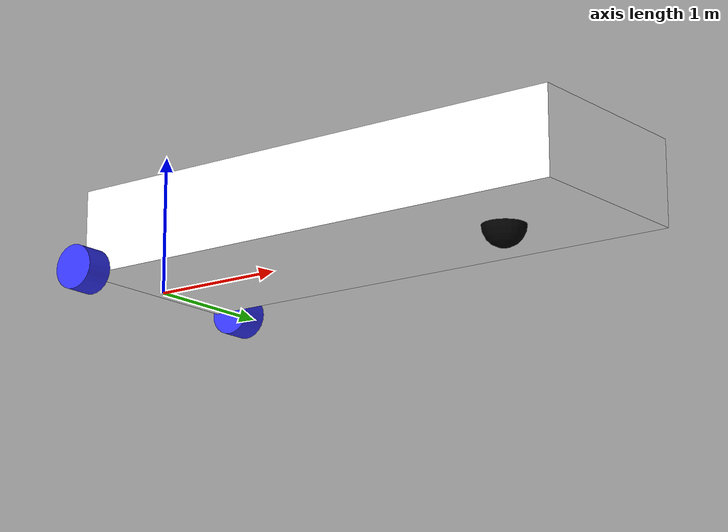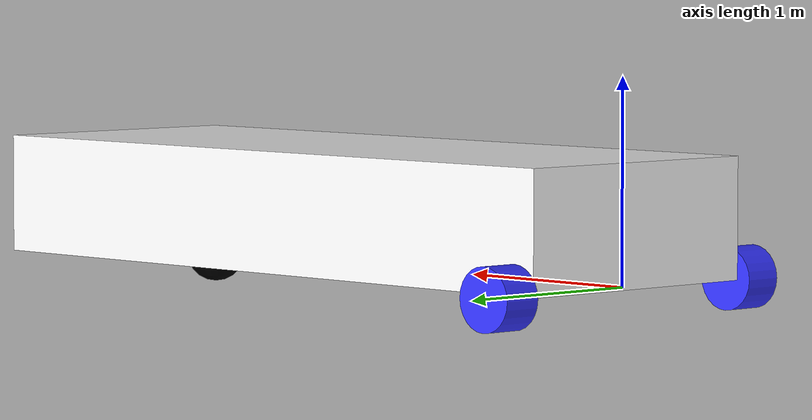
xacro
<?xml version="1.0"?>
<robot xmlns:xacro="http://www.ros.org/wiki/xacro" name="traffic_vehicle" >

    <xacro:include filename="$(find generate_labels)/urdf/inertial_macros.xacro"/>
    <xacro:arg name="robot_namespace" default=""/>
    <xacro:arg name="bit1" default="0xffff"/>

    <material name="white">
        <color rgba="1 1 1 1" />
    </material>

    <material name="orange">
        <color rgba="1 0.3 0.1 1"/>
    </material>

    <material name="blue">
        <color rgba="0.2 0.2 1 1"/>
    </material>

    <material name="black">
        <color rgba="0 0 0 1"/>
    </material>

    <!-- BASE LINK -->

    <link name="$(arg robot_namespace)/base_link">

    </link>

    <!-- CHASSIS LINK -->

    <joint name="$(arg robot_namespace)/chassis_joint" type="fixed">
        <parent link="$(arg robot_namespace)/base_link"/>
        <child link="$(arg robot_namespace)/chassis"/>
        <origin xyz="-0.1 0 0"/>
    </joint>

    <link name="$(arg robot_namespace)/chassis">
        <visual>
            <origin xyz="1.9 0.0 0.30"/>
            <geometry>
                <box size="3.8 1.4 0.60"/>
            </geometry>
            <material name="white"/>
        </visual>
        <collision>
            <origin xyz="1.9 0.0 0.30"/>
            <geometry>
                <box size="3.8 1.4 0.60"/>
            </geometry>
        </collision>
        <xacro:inertial_box mass="1.3729096e+00" x="2.0" y="1.4" z="0.15">
            <origin xyz="1.9 0 0.075" rpy="0 0 0"/>
        </xacro:inertial_box>
    </link>

    <!-- LEFT WHEEL LINK -->

    <joint name="$(arg robot_namespace)/left_wheel_joint" type="continuous">
        <parent link="$(arg robot_namespace)/base_link"/>
        <child link="$(arg robot_namespace)/left_wheel"/>
        <origin xyz="0 0.825 0" rpy="-${pi/2} 0 0" />
        <axis xyz="0 0 1"/>
    </joint>

    <link name="$(arg robot_namespace)/left_wheel">
        <visual>
            <geometry>
                <cylinder radius="0.155" length="0.2"/>
            </geometry>
            <material name="blue"/>
        </visual>
        <collision>
            <geometry>
                <cylinder radius="0.155" length="0.2"/>
            </geometry>
        </collision>
        <xacro:inertial_cylinder mass="2.8498940e-02" length="0.2" radius="0.155">
            <origin xyz="0 0 0" rpy="0 0 0"/>
        </xacro:inertial_cylinder>
    </link>

    <!-- RIGHT WHEEL LINK -->

    <joint name="$(arg robot_namespace)/right_wheel_joint" type="continuous">
        <parent link="$(arg robot_namespace)/base_link"/>
        <child link="$(arg robot_namespace)/right_wheel"/>
        <origin xyz="0 -0.825 0" rpy="${pi/2} 0 0" />
        <axis xyz="0 0 -1"/>
    </joint>

    <link name="$(arg robot_namespace)/right_wheel">
        <visual>
            <geometry>
                <cylinder radius="0.155" length="0.2"/>
            </geometry>
            <material name="blue"/>
        </visual>
        <collision>
            <geometry>
                <cylinder radius="0.155" length="0.2"/>
            </geometry>
        </collision>
        <xacro:inertial_cylinder mass="0.1" length="0.2" radius="0.155">
            <origin xyz="0 0 0" rpy="0 0 0"/>
        </xacro:inertial_cylinder>
    </link>

    <!-- CASTER WHEEL LINK -->

    <joint name="$(arg robot_namespace)/caster_wheel_joint" type="fixed">
        <parent link="$(arg robot_namespace)/chassis"/>
        <child link="$(arg robot_namespace)/caster_wheel"/>
        <origin xyz="3.0 0 0"/>
    </joint>

    <link name="$(arg robot_namespace)/caster_wheel">
        <visual>
            <geometry>
                <sphere radius="0.15"/>
            </geometry>
            <material name="black"/>
        </visual>
        <collision>
            <geometry>
                <sphere radius="0.15"/>
            </geometry>
        </collision>
        <xacro:inertial_sphere mass="0.1" radius="0.15">
            <origin xyz="0 0 0" rpy="0 0 0"/>
        </xacro:inertial_sphere>
    </link>

    <gazebo reference="$(arg robot_namespace)/chassis">
        <material>Gazebo/Green</material>
        <collision>
            <surface>
                <contact>
                    <collide_bitmask>$(arg bit1)</collide_bitmask>
                </contact>
            </surface>
        </collision>

    </gazebo>

    <gazebo reference="$(arg robot_namespace)/caster_wheel">
        <mu1>0.1</mu1>
        <mu2>0.1</mu2>
        <kp>1000000.0</kp>
        <kd>100.0</kd>
        <minDepth>0.001</minDepth>
        <maxVel>1.0</maxVel>
        <collision>
            <surface>
                <contact>
                    <collide_bitmask>$(arg bit1)</collide_bitmask>
                </contact>
            </surface>
        </collision>
        <material>Gazebo/FlatBlack</material>
    </gazebo>

    <gazebo reference="$(arg robot_namespace)/right_wheel">
        <mu1>500</mu1>
        <mu2>500</mu2>
        <kp>500000.0</kp>
        <kd>10.0</kd>
        <minDepth>0.001</minDepth>
        <maxVel>0.1</maxVel>
        <fdir1>1 0 0</fdir1>
        <collision>
            <surface>
                <contact>
                    <collide_bitmask>$(arg bit1)</collide_bitmask>
                </contact>
            </surface>
        </collision>
        <material>Gazebo/FlatBlack</material>
    </gazebo>

    <gazebo reference="$(arg robot_namespace)/left_wheel">
        <mu1>500</mu1>
        <mu2>500</mu2>
        <kp>500000.0</kp>
        <kd>10.0</kd>
        <minDepth>0.001</minDepth>
        <maxVel>0.1</maxVel>
        <fdir1>1 0 0</fdir1>
        <collision>
            <surface>
                <contact>
                    <collide_bitmask>$(arg bit1)</collide_bitmask>
                </contact>
            </surface>
        </collision>
        <material>Gazebo/FlatBlack</material>
    </gazebo>

    <gazebo>
        <plugin name="wheel_drive_controller" filename="libgazebo_ros_diff_drive.so">
            <!-- wheels -->
            <left_joint>$(arg robot_namespace)/left_wheel_joint</left_joint>
            <right_joint>$(arg robot_namespace)/right_wheel_joint</right_joint>

            <!-- kinematics -->
            <wheel_separation>1.65</wheel_separation>
            <wheel_diameter>0.31</wheel_diameter>

            <!-- Limits -->
            <max_wheel_torque>20.0</max_wheel_torque>

            <max_wheel_acceleration>22.0</max_wheel_acceleration>
            <odometry_source>1</odometry_source>

            <!-- Output -->
            <odometry_frame>$(arg robot_namespace)/odom</odometry_frame>
            <robot_base_frame>$(arg robot_namespace)/base_link</robot_base_frame>

            <!-- topic & re remappings -->
            <ros>
                <remapping>/cmd_vel:=$(arg robot_namespace)/cmd_vel</remapping>
                <remapping>/odom:=$(arg robot_namespace)/odom</remapping>
                <namespace>$(arg robot_namespace)</namespace>
            </ros>

            <publish_odom>true</publish_odom>
            <publish_odom_tf>true</publish_odom_tf>
            <publish_wheel_tf>true</publish_wheel_tf>

            <update_rate>30.0</update_rate>
        </plugin>
    </gazebo>

</robot>

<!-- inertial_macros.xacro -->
<robot xmlns:xacro="http://www.ros.org/wiki/xacro">

    <xacro:macro name="inertial_sphere" params="mass radius *origin">
        <inertial>
            <xacro:insert_block name="origin"/>
            <mass value="${mass}" />
            <inertia ixx="${(2/5) * mass * (radius*radius)}" ixy="0.0" ixz="0.0"
                    iyy="${(2/5) * mass * (radius*radius)}" iyz="0.0"
                    izz="${(2/5) * mass * (radius*radius)}" />
        </inertial>
    </xacro:macro>

    <xacro:macro name="inertial_box" params="mass x y z *origin">
        <inertial>
            <xacro:insert_block name="origin"/>
            <mass value="${mass}" />
            <inertia ixx="${(1/12) * mass * (y*y+z*z)}" ixy="0.0" ixz="0.0"
                    iyy="${(1/12) * mass * (x*x+z*z)}" iyz="0.0"
                    izz="${(1/12) * mass * (x*x+y*y)}" />
        </inertial>
    </xacro:macro>

    <xacro:macro name="inertial_cylinder" params="mass length radius *origin">
        <inertial>
            <xacro:insert_block name="origin"/>
            <mass value="${mass}" />
            <inertia ixx="${(1/12) * mass * (3*radius*radius + length*length)}" ixy="0.0" ixz="0.0"
                    iyy="${(1/12) * mass * (3*radius*radius + length*length)}" iyz="0.0"
                    izz="${(1/2) * mass * (radius*radius)}" />
        </inertial>
    </xacro:macro>

</robot>
